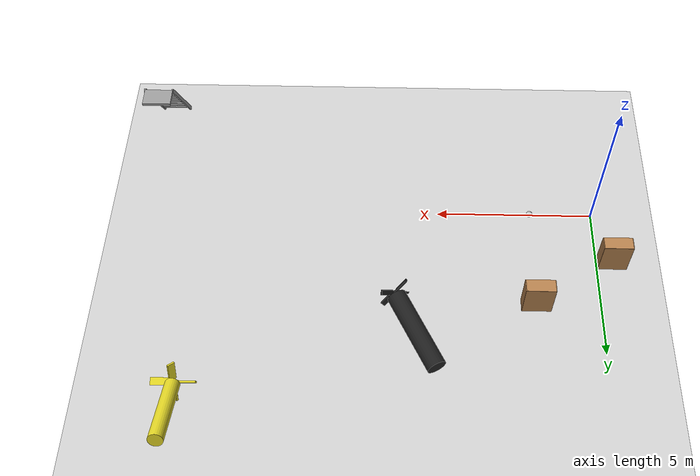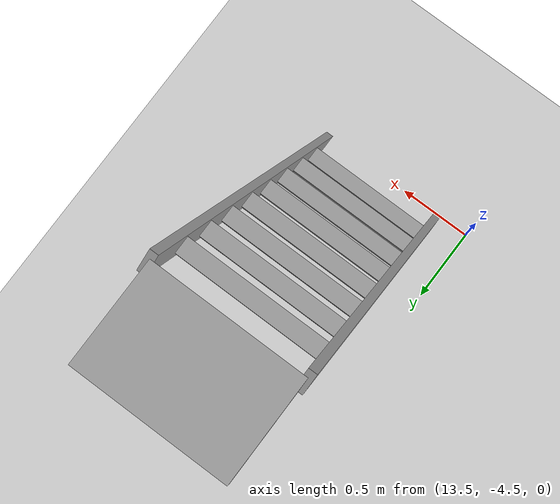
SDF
<sdf version="1.5">
 <world name="default">
  <model name="ground_plane">
   <static>1</static>
   <link name="link">
    <collision name="collision">
     <geometry><plane><normal>0 0 1</normal><size>100 100</size></plane></geometry>
     <surface><friction><ode><mu>100</mu><mu2>50</mu2></ode></friction></surface>
    </collision>
    <visual name="visual">
     <cast_shadows>0</cast_shadows>
     <geometry><plane><normal>0 0 1</normal><size>100 100</size></plane></geometry>
     <material>
      <script><uri>file://media/materials/scripts/gazebo.material</uri><name>Gazebo/Grey</name></script>
     </material>
    </visual>
   </link>
  </model>
  <light name="sun" type="directional">
   <pose>0 0 10 0 -0 0</pose>
   <diffuse>0.8 0.8 0.8 1</diffuse>
   <specular>0.2 0.2 0.2 1</specular>
   <attenuation>
    <range>1000</range>
    <constant>0.9</constant>
    <linear>0.01</linear>
    <quadratic>0.001</quadratic>
   </attenuation>
   <direction>-0.5 0.1 -0.9</direction>
  </light>
  <model name="sphere">
   <pose>2 0 0.1 0 -0 0</pose>
   <link name="body">
    <inertial>
     <inertia><ixx>1</ixx><ixy>0</ixy><ixz>0</ixz><iyy>1</iyy><iyz>0</iyz><izz>1</izz></inertia>
     <mass>1</mass>
    </inertial>
    <collision name="geom"><geometry><sphere><radius>0.1</radius></sphere></geometry></collision>
    <visual name="visual">
     <geometry><sphere><radius>0.1</radius></sphere></geometry>
     <material><script><uri>__default__</uri><name>__default__</name></script></material>
    </visual>
   </link>
   <static>1</static>
  </model>
  <physics name="default_physics" default="0" type="ode">
   <max_step_size>0.001</max_step_size>
   <real_time_factor>1</real_time_factor>
   <real_time_update_rate>1000</real_time_update_rate>
   <gravity>0 0 -9.8</gravity>
   <magnetic_field>6e-06 2.3e-05 -4.2e-05</magnetic_field>
  </physics>
  <scene><ambient>0.4 0.4 0.4 1</ambient><background>0.7 0.7 0.7 1</background><shadows>1</shadows></scene>
  <spherical_coordinates>
   <surface_model>EARTH_WGS84</surface_model>
   <latitude_deg>0</latitude_deg>
   <longitude_deg>0</longitude_deg>
   <elevation>0</elevation>
   <heading_deg>0</heading_deg>
  </spherical_coordinates>
  <model name="bookshelf">
   <static>1</static>
   <link name="link">
    <inertial><mass>1</mass></inertial>
    <collision name="back">
     <pose>0 0.005 0.6 0 -0 0</pose>
     <geometry><box><size>0.9 0.01 1.2</size></box></geometry>
    </collision>
    <visual name="visual1">
     <pose>0 0.005 0.6 0 -0 0</pose>
     <geometry><box><size>0.9 0.01 1.2</size></box></geometry>
     <material>
      <script><uri>file://media/materials/scripts/gazebo.material</uri><name>Gazebo/Wood</name></script>
     </material>
    </visual>
    <collision name="left_side">
     <pose>0.45 -0.195 0.6 0 -0 0</pose>
     <geometry><box><size>0.02 0.4 1.2</size></box></geometry>
    </collision>
    <visual name="visual2">
     <pose>0.45 -0.195 0.6 0 -0 0</pose>
     <geometry><box><size>0.02 0.4 1.2</size></box></geometry>
     <material>
      <script><uri>file://media/materials/scripts/gazebo.material</uri><name>Gazebo/Wood</name></script>
     </material>
    </visual>
    <collision name="right_side">
     <pose>-0.45 -0.195 0.6 0 -0 0</pose>
     <geometry><box><size>0.02 0.4 1.2</size></box></geometry>
    </collision>
    <visual name="visual3">
     <pose>-0.45 -0.195 0.6 0 -0 0</pose>
     <geometry><box><size>0.02 0.4 1.2</size></box></geometry>
     <material>
      <script><uri>file://media/materials/scripts/gazebo.material</uri><name>Gazebo/Wood</name></script>
     </material>
    </visual>
    <collision name="bottom">
     <pose>0 -0.195 0.03 0 -0 0</pose>
     <geometry><box><size>0.88 0.4 0.06</size></box></geometry>
    </collision>
    <visual name="visual4">
     <pose>0 -0.195 0.03 0 -0 0</pose>
     <geometry><box><size>0.88 0.4 0.06</size></box></geometry>
     <material>
      <script><uri>file://media/materials/scripts/gazebo.material</uri><name>Gazebo/Wood</name></script>
     </material>
    </visual>
    <collision name="top">
     <pose>0 -0.195 1.19 0 -0 0</pose>
     <geometry><box><size>0.88 0.4 0.02</size></box></geometry>
    </collision>
    <visual name="visual5">
     <pose>0 -0.195 1.19 0 -0 0</pose>
     <geometry><box><size>0.88 0.4 0.02</size></box></geometry>
     <material>
      <script><uri>file://media/materials/scripts/gazebo.material</uri><name>Gazebo/Wood</name></script>
     </material>
    </visual>
    <collision name="low_shelf">
     <pose>0 -0.195 0.43 0 -0 0</pose>
     <geometry><box><size>0.88 0.4 0.02</size></box></geometry>
    </collision>
    <visual name="visual6">
     <pose>0 -0.195 0.43 0 -0 0</pose>
     <geometry><box><size>0.88 0.4 0.02</size></box></geometry>
     <material>
      <script><uri>file://media/materials/scripts/gazebo.material</uri><name>Gazebo/Wood</name></script>
     </material>
    </visual>
    <collision name="high_shelf">
     <pose>0 -0.195 0.8 0 -0 0</pose>
     <geometry><box><size>0.88 0.4 0.02</size></box></geometry>
    </collision>
    <visual name="visual7">
     <pose>0 -0.195 0.8 0 -0 0</pose>
     <geometry><box><size>0.88 0.4 0.02</size></box></geometry>
     <material>
      <script><uri>file://media/materials/scripts/gazebo.material</uri><name>Gazebo/Wood</name></script>
     </material>
    </visual>
   </link>
   <pose>2 3.56217 0 0 -0 0</pose>
  </model>
  <model name="bookshelf_0">
   <static>1</static>
   <link name="link">
    <inertial><mass>1</mass></inertial>
    <collision name="back">
     <pose>0 0.005 0.6 0 -0 0</pose>
     <geometry><box><size>0.9 0.01 1.2</size></box></geometry>
    </collision>
    <visual name="visual1">
     <pose>0 0.005 0.6 0 -0 0</pose>
     <geometry><box><size>0.9 0.01 1.2</size></box></geometry>
     <material>
      <script><uri>file://media/materials/scripts/gazebo.material</uri><name>Gazebo/Wood</name></script>
     </material>
    </visual>
    <collision name="left_side">
     <pose>0.45 -0.195 0.6 0 -0 0</pose>
     <geometry><box><size>0.02 0.4 1.2</size></box></geometry>
    </collision>
    <visual name="visual2">
     <pose>0.45 -0.195 0.6 0 -0 0</pose>
     <geometry><box><size>0.02 0.4 1.2</size></box></geometry>
     <material>
      <script><uri>file://media/materials/scripts/gazebo.material</uri><name>Gazebo/Wood</name></script>
     </material>
    </visual>
    <collision name="right_side">
     <pose>-0.45 -0.195 0.6 0 -0 0</pose>
     <geometry><box><size>0.02 0.4 1.2</size></box></geometry>
    </collision>
    <visual name="visual3">
     <pose>-0.45 -0.195 0.6 0 -0 0</pose>
     <geometry><box><size>0.02 0.4 1.2</size></box></geometry>
     <material>
      <script><uri>file://media/materials/scripts/gazebo.material</uri><name>Gazebo/Wood</name></script>
     </material>
    </visual>
    <collision name="bottom">
     <pose>0 -0.195 0.03 0 -0 0</pose>
     <geometry><box><size>0.88 0.4 0.06</size></box></geometry>
    </collision>
    <visual name="visual4">
     <pose>0 -0.195 0.03 0 -0 0</pose>
     <geometry><box><size>0.88 0.4 0.06</size></box></geometry>
     <material>
      <script><uri>file://media/materials/scripts/gazebo.material</uri><name>Gazebo/Wood</name></script>
     </material>
    </visual>
    <collision name="top">
     <pose>0 -0.195 1.19 0 -0 0</pose>
     <geometry><box><size>0.88 0.4 0.02</size></box></geometry>
    </collision>
    <visual name="visual5">
     <pose>0 -0.195 1.19 0 -0 0</pose>
     <geometry><box><size>0.88 0.4 0.02</size></box></geometry>
     <material>
      <script><uri>file://media/materials/scripts/gazebo.material</uri><name>Gazebo/Wood</name></script>
     </material>
    </visual>
    <collision name="low_shelf">
     <pose>0 -0.195 0.43 0 -0 0</pose>
     <geometry><box><size>0.88 0.4 0.02</size></box></geometry>
    </collision>
    <visual name="visual6">
     <pose>0 -0.195 0.43 0 -0 0</pose>
     <geometry><box><size>0.88 0.4 0.02</size></box></geometry>
     <material>
      <script><uri>file://media/materials/scripts/gazebo.material</uri><name>Gazebo/Wood</name></script>
     </material>
    </visual>
    <collision name="high_shelf">
     <pose>0 -0.195 0.8 0 -0 0</pose>
     <geometry><box><size>0.88 0.4 0.02</size></box></geometry>
    </collision>
    <visual name="visual7">
     <pose>0 -0.195 0.8 0 -0 0</pose>
     <geometry><box><size>0.88 0.4 0.02</size></box></geometry>
     <material>
      <script><uri>file://media/materials/scripts/gazebo.material</uri><name>Gazebo/Wood</name></script>
     </material>
    </visual>
   </link>
   <pose>-0.493645 2 0 0 -0 0</pose>
  </model>
  <model name="submarine">
   <pose>12.0582 8.53885 3.44094 1.97848 -0 0</pose>
   <link name="body">
    <inertial>
     <mass>251.327</mass>
     <inertia><ixx>86.2891</ixx><ixy>0</ixy><ixz>0</ixz><iyy>86.2891</iyy><iyz>0</iyz><izz>5.02655</izz></inertia>
    </inertial>
    <visual name="body_visual">
     <geometry><cylinder><radius>0.2</radius><length>2</length></cylinder></geometry>
     <material>
      <script><uri>file://media/materials/scripts/gazebo.material</uri><name>Gazebo/Yellow</name></script>
     </material>
    </visual>
    <collision name="body_collision">
     <geometry><cylinder><radius>0.2</radius><length>2</length></cylinder></geometry>
    </collision>
    <visual name="spacer_visual">
     <pose>0 0 1.05855 0 -0 0</pose>
     <geometry><cylinder><radius>0.0933402</radius><length>0.127211</length></cylinder></geometry>
     <material>
      <script><uri>file://media/materials/scripts/gazebo.material</uri><name>Gazebo/Yellow</name></script>
     </material>
    </visual>
   </link>
   <link name="propeller">
    <pose>0 0 1.09 3.14159 -0 0</pose>
    <inertial>
     <mass>21.82</mass>
     <inertia>
      <ixx>0.459994</ixx>
      <ixy>0</ixy>
      <ixz>0</ixz>
      <iyy>0.459994</iyy>
      <iyz>0</iyz>
      <izz>0.909167</izz>
     </inertia>
    </inertial>
    <visual name="blade1_visual">
     <pose>0.34334 0 0 0.785398 -0 0</pose>
     <geometry><box><size>0.5 0.2 0.05455</size></box></geometry>
     <material>
      <script><uri>file://media/materials/scripts/gazebo.material</uri><name>Gazebo/Yellow</name></script>
     </material>
    </visual>
    <collision name="blade1_collision">
     <pose>0.34334 0 0 0.785398 -0 0</pose>
     <geometry><box><size>0.5 0.2 0.05455</size></box></geometry>
    </collision>
    <visual name="blade2_visual">
     <pose>0 0.34334 0 0.785398 0 1.5708</pose>
     <geometry><box><size>0.5 0.2 0.05455</size></box></geometry>
     <material>
      <script><uri>file://media/materials/scripts/gazebo.material</uri><name>Gazebo/Yellow</name></script>
     </material>
    </visual>
    <collision name="blade2_collision">
     <pose>0 0.34334 0 0.785398 0 1.5708</pose>
     <geometry><box><size>0.5 0.2 0.05455</size></box></geometry>
    </collision>
    <visual name="blade3_visual">
     <pose>-0.34334 -0 0 -0.785398 0 0</pose>
     <geometry><box><size>0.5 0.2 0.05455</size></box></geometry>
     <material>
      <script><uri>file://media/materials/scripts/gazebo.material</uri><name>Gazebo/Yellow</name></script>
     </material>
    </visual>
    <collision name="blade3_collision">
     <pose>-0.34334 -0 0 -0.785398 0 0</pose>
     <geometry><box><size>0.5 0.2 0.05455</size></box></geometry>
    </collision>
    <visual name="blade4_visual">
     <pose>-0 -0.34334 0 -0.785398 -0 1.5708</pose>
     <geometry><box><size>0.5 0.2 0.05455</size></box></geometry>
     <material>
      <script><uri>file://media/materials/scripts/gazebo.material</uri><name>Gazebo/Yellow</name></script>
     </material>
    </visual>
    <collision name="blade4_collision">
     <pose>-0 -0.34334 0 -0.785398 -0 1.5708</pose>
     <geometry><box><size>0.5 0.2 0.05455</size></box></geometry>
    </collision>
   </link>
   <joint name="spinning_joint" type="revolute">
    <parent>body</parent>
    <child>propeller</child>
    <axis>
     <xyz>0 0 1</xyz>
     <use_parent_model_frame>1</use_parent_model_frame>
     <limit><lower>-1e+12</lower><upper>1e+12</upper><effort>-1</effort><velocity>-1</velocity></limit>
     <dynamics><spring_reference>0</spring_reference><spring_stiffness>0</spring_stiffness></dynamics>
    </axis>
   </joint>
   <plugin name="submarine_propeller_1" filename="libLiftDragPlugin.so">
    <air_density>1000</air_density>
    <cla>1.2535816618911175</cla>
    <cla_stall>-1.4326647564469914</cla_stall>
    <cda>0</cda>
    <cda_stall>1.4326647564469914</cda_stall>
    <alpha_stall>1.396</alpha_stall>
    <a0>0</a0>
    <area>0.27637</area>
    <upward>0 -0.7071067811865476 -0.7071067811865475</upward>
    <forward>0 -0.7071067811865475 0.7071067811865476</forward>
    <link_name>propeller</link_name>
    <cp>0.35 0 0</cp>
   </plugin>
   <plugin name="submarine_propeller_2" filename="libLiftDragPlugin.so">
    <air_density>1000</air_density>
    <cla>1.2535816618911175</cla>
    <cla_stall>-1.4326647564469914</cla_stall>
    <cda>0</cda>
    <cda_stall>1.4326647564469914</cda_stall>
    <alpha_stall>1.396</alpha_stall>
    <a0>0</a0>
    <area>0.27637</area>
    <upward>-0.7071067811865475 0 -0.7071067811865476</upward>
    <forward>-0.7071067811865476 0 0.7071067811865475</forward>
    <link_name>propeller</link_name>
    <cp>0 -0.35 0</cp>
   </plugin>
   <plugin name="submarine_propeller_3" filename="libLiftDragPlugin.so">
    <air_density>1000</air_density>
    <cla>1.2535816618911175</cla>
    <cla_stall>-1.4326647564469914</cla_stall>
    <cda>0</cda>
    <cda_stall>1.4326647564469914</cda_stall>
    <alpha_stall>1.396</alpha_stall>
    <a0>0</a0>
    <area>0.27637</area>
    <upward>0 0.7071067811865475 -0.7071067811865476</upward>
    <forward>0 -0.7071067811865476 -0.7071067811865475</forward>
    <link_name>propeller</link_name>
    <cp>-0.35 0 0</cp>
   </plugin>
   <plugin name="submarine_propeller_4" filename="libLiftDragPlugin.so">
    <air_density>1000</air_density>
    <cla>1.2535816618911175</cla>
    <cla_stall>-1.4326647564469914</cla_stall>
    <cda>0</cda>
    <cda_stall>1.4326647564469914</cda_stall>
    <alpha_stall>1.396</alpha_stall>
    <a0>0</a0>
    <area>0.27637</area>
    <upward>0.7071067811865476 0 -0.7071067811865475</upward>
    <forward>0.7071067811865475 0 0.7071067811865476</forward>
    <link_name>propeller</link_name>
    <cp>0 0.35 0</cp>
   </plugin>
   <plugin name="buoyancy" filename="libBuoyancyPlugin.so"><fluid_density>1000</fluid_density></plugin>
  </model>
  <model name="submarine_sinking">
   <pose>6.20713 3.5789 0.44906 1.47308 0.870194 0.413315</pose>
   <link name="body">
    <pose>0 0 -1.07935 0 -0 0</pose>
    <inertial>
     <mass>1102.7</mass>
     <inertia><ixx>645.998</ixx><ixy>0</ixy><ixz>0</ixz><iyy>645.998</iyy><iyz>0</iyz><izz>49.6215</izz></inertia>
    </inertial>
    <visual name="body_visual">
     <geometry><cylinder><radius>0.3</radius><length>2.6</length></cylinder></geometry>
     <material>
      <script><uri>file://media/materials/scripts/gazebo.material</uri><name>Gazebo/Black</name></script>
     </material>
    </visual>
    <collision name="body_collision">
     <geometry><cylinder><radius>0.3</radius><length>2.6</length></cylinder></geometry>
    </collision>
    <visual name="spacer_visual">
     <pose>0 0 1.37855 0 -0 0</pose>
     <geometry><cylinder><radius>0.0933402</radius><length>0.127211</length></cylinder></geometry>
     <material>
      <script><uri>file://media/materials/scripts/gazebo.material</uri><name>Gazebo/Black</name></script>
     </material>
    </visual>
   </link>
   <link name="propeller">
    <pose>0 0 0.3455 3.14159 -0 0</pose>
    <inertial>
     <mass>25.2312</mass>
     <inertia><ixx>0.531907</ixx><ixy>0</ixy><ixz>0</ixz><iyy>0.531907</iyy><iyz>0</iyz><izz>1.0513</izz></inertia>
    </inertial>
    <visual name="blade1_visual">
     <pose>0.34334 0 0 0.785398 -0 0</pose>
     <geometry><box><size>0.5 0.154178 0.05455</size></box></geometry>
     <material>
      <script><uri>file://media/materials/scripts/gazebo.material</uri><name>Gazebo/Black</name></script>
     </material>
    </visual>
    <collision name="blade1_collision">
     <pose>0.34334 0 0 0.785398 -0 0</pose>
     <geometry><box><size>0.5 0.154178 0.05455</size></box></geometry>
    </collision>
    <visual name="blade2_visual">
     <pose>0 0.34334 0 0.785398 0 1.5708</pose>
     <geometry><box><size>0.5 0.154178 0.05455</size></box></geometry>
     <material>
      <script><uri>file://media/materials/scripts/gazebo.material</uri><name>Gazebo/Black</name></script>
     </material>
    </visual>
    <collision name="blade2_collision">
     <pose>0 0.34334 0 0.785398 0 1.5708</pose>
     <geometry><box><size>0.5 0.154178 0.05455</size></box></geometry>
    </collision>
    <visual name="blade3_visual">
     <pose>-0.34334 -0 0 -0.785398 0 0</pose>
     <geometry><box><size>0.5 0.154178 0.05455</size></box></geometry>
     <material>
      <script><uri>file://media/materials/scripts/gazebo.material</uri><name>Gazebo/Black</name></script>
     </material>
    </visual>
    <collision name="blade3_collision">
     <pose>-0.34334 -0 0 -0.785398 0 0</pose>
     <geometry><box><size>0.5 0.154178 0.05455</size></box></geometry>
    </collision>
    <visual name="blade4_visual">
     <pose>-0 -0.34334 0 -0.785398 -0 1.5708</pose>
     <geometry><box><size>0.5 0.154178 0.05455</size></box></geometry>
     <material>
      <script><uri>file://media/materials/scripts/gazebo.material</uri><name>Gazebo/Black</name></script>
     </material>
    </visual>
    <collision name="blade4_collision">
     <pose>-0 -0.34334 0 -0.785398 -0 1.5708</pose>
     <geometry><box><size>0.5 0.154178 0.05455</size></box></geometry>
    </collision>
   </link>
   <joint name="spinning_joint" type="revolute">
    <parent>body</parent>
    <child>propeller</child>
    <axis>
     <xyz>0 0 1</xyz>
     <use_parent_model_frame>1</use_parent_model_frame>
     <limit><lower>-1e+12</lower><upper>1e+12</upper><effort>-1</effort><velocity>-1</velocity></limit>
     <dynamics><spring_reference>0</spring_reference><spring_stiffness>0</spring_stiffness></dynamics>
    </axis>
   </joint>
   <plugin name="buoyancy" filename="libBuoyancyPlugin.so"><fluid_density>999.1026</fluid_density></plugin>
  </model>
  <model name="ladder_60deg_0rails">
   <static>1</static>
   <link name="step0">
    <pose>0 0.15396 0.266667 0 -0 0</pose>
    <inertial>
     <mass>9.75482</mass>
     <inertia>
      <ixx>0.00957124</ixx>
      <iyy>0.65963</iyy>
      <izz>0.666842</izz>
      <ixy>0</ixy>
      <ixz>0</ixz>
      <iyz>0</iyz>
     </inertia>
    </inertial>
    <collision name="collision"><geometry><box><size>0.9 0.1016 0.0381</size></box></geometry></collision>
    <visual name="visual">
     <geometry><box><size>0.9 0.1016 0.0381</size></box></geometry>
     <material>
      <script><uri>file://media/materials/scripts/gazebo.material</uri><name>Gazebo/Grey</name></script>
     </material>
    </visual>
   </link>
   <link name="step1">
    <pose>0 0.30792 0.533333 0 -0 0</pose>
    <inertial>
     <mass>9.75482</mass>
     <inertia>
      <ixx>0.00957124</ixx>
      <iyy>0.65963</iyy>
      <izz>0.666842</izz>
      <ixy>0</ixy>
      <ixz>0</ixz>
      <iyz>0</iyz>
     </inertia>
    </inertial>
    <collision name="collision"><geometry><box><size>0.9 0.1016 0.0381</size></box></geometry></collision>
    <visual name="visual">
     <geometry><box><size>0.9 0.1016 0.0381</size></box></geometry>
     <material>
      <script><uri>file://media/materials/scripts/gazebo.material</uri><name>Gazebo/Grey</name></script>
     </material>
    </visual>
   </link>
   <link name="step2">
    <pose>0 0.46188 0.8 0 -0 0</pose>
    <inertial>
     <mass>9.75482</mass>
     <inertia>
      <ixx>0.00957124</ixx>
      <iyy>0.65963</iyy>
      <izz>0.666842</izz>
      <ixy>0</ixy>
      <ixz>0</ixz>
      <iyz>0</iyz>
     </inertia>
    </inertial>
    <collision name="collision"><geometry><box><size>0.9 0.1016 0.0381</size></box></geometry></collision>
    <visual name="visual">
     <geometry><box><size>0.9 0.1016 0.0381</size></box></geometry>
     <material>
      <script><uri>file://media/materials/scripts/gazebo.material</uri><name>Gazebo/Grey</name></script>
     </material>
    </visual>
   </link>
   <link name="step3">
    <pose>0 0.61584 1.06667 0 -0 0</pose>
    <inertial>
     <mass>9.75482</mass>
     <inertia>
      <ixx>0.00957124</ixx>
      <iyy>0.65963</iyy>
      <izz>0.666842</izz>
      <ixy>0</ixy>
      <ixz>0</ixz>
      <iyz>0</iyz>
     </inertia>
    </inertial>
    <collision name="collision"><geometry><box><size>0.9 0.1016 0.0381</size></box></geometry></collision>
    <visual name="visual">
     <geometry><box><size>0.9 0.1016 0.0381</size></box></geometry>
     <material>
      <script><uri>file://media/materials/scripts/gazebo.material</uri><name>Gazebo/Grey</name></script>
     </material>
    </visual>
   </link>
   <link name="step4">
    <pose>0 0.7698 1.33333 0 -0 0</pose>
    <inertial>
     <mass>9.75482</mass>
     <inertia>
      <ixx>0.00957124</ixx>
      <iyy>0.65963</iyy>
      <izz>0.666842</izz>
      <ixy>0</ixy>
      <ixz>0</ixz>
      <iyz>0</iyz>
     </inertia>
    </inertial>
    <collision name="collision"><geometry><box><size>0.9 0.1016 0.0381</size></box></geometry></collision>
    <visual name="visual">
     <geometry><box><size>0.9 0.1016 0.0381</size></box></geometry>
     <material>
      <script><uri>file://media/materials/scripts/gazebo.material</uri><name>Gazebo/Grey</name></script>
     </material>
    </visual>
   </link>
   <link name="step5">
    <pose>0 0.92376 1.6 0 -0 0</pose>
    <inertial>
     <mass>9.75482</mass>
     <inertia>
      <ixx>0.00957124</ixx>
      <iyy>0.65963</iyy>
      <izz>0.666842</izz>
      <ixy>0</ixy>
      <ixz>0</ixz>
      <iyz>0</iyz>
     </inertia>
    </inertial>
    <collision name="collision"><geometry><box><size>0.9 0.1016 0.0381</size></box></geometry></collision>
    <visual name="visual">
     <geometry><box><size>0.9 0.1016 0.0381</size></box></geometry>
     <material>
      <script><uri>file://media/materials/scripts/gazebo.material</uri><name>Gazebo/Grey</name></script>
     </material>
    </visual>
   </link>
   <link name="step6">
    <pose>0 1.07772 1.86667 0 -0 0</pose>
    <inertial>
     <mass>9.75482</mass>
     <inertia>
      <ixx>0.00957124</ixx>
      <iyy>0.65963</iyy>
      <izz>0.666842</izz>
      <ixy>0</ixy>
      <ixz>0</ixz>
      <iyz>0</iyz>
     </inertia>
    </inertial>
    <collision name="collision"><geometry><box><size>0.9 0.1016 0.0381</size></box></geometry></collision>
    <visual name="visual">
     <geometry><box><size>0.9 0.1016 0.0381</size></box></geometry>
     <material>
      <script><uri>file://media/materials/scripts/gazebo.material</uri><name>Gazebo/Grey</name></script>
     </material>
    </visual>
   </link>
   <link name="step7">
    <pose>0 1.23168 2.13333 0 -0 0</pose>
    <inertial>
     <mass>9.75482</mass>
     <inertia>
      <ixx>0.00957124</ixx>
      <iyy>0.65963</iyy>
      <izz>0.666842</izz>
      <ixy>0</ixy>
      <ixz>0</ixz>
      <iyz>0</iyz>
     </inertia>
    </inertial>
    <collision name="collision"><geometry><box><size>0.9 0.1016 0.0381</size></box></geometry></collision>
    <visual name="visual">
     <geometry><box><size>0.9 0.1016 0.0381</size></box></geometry>
     <material>
      <script><uri>file://media/materials/scripts/gazebo.material</uri><name>Gazebo/Grey</name></script>
     </material>
    </visual>
   </link>
   <link name="landing">
    <pose>0 1.68564 2.4 0 -0 0</pose>
    <inertial>
     <mass>57.6072</mass>
     <inertia><ixx>1.73518</ixx><iyy>3.89545</iyy><izz>5.6167</izz><ixy>0</ixy><ixz>0</ixz><iyz>0</iyz></inertia>
    </inertial>
    <collision name="collision"><geometry><box><size>0.9 0.6 0.1016</size></box></geometry></collision>
    <visual name="visual">
     <geometry><box><size>0.9 0.6 0.1016</size></box></geometry>
     <material>
      <script><uri>file://media/materials/scripts/gazebo.material</uri><name>Gazebo/Grey</name></script>
     </material>
    </visual>
   </link>
   <link name="left_side_wall">
    <pose>-0.45 0.69282 1.2 1.0472 -0 0</pose>
    <collision name="collision"><geometry><box><size>0.0508 2.85128 0.13</size></box></geometry></collision>
    <visual name="visual">
     <geometry><box><size>0.0508 2.85128 0.13</size></box></geometry>
     <material>
      <script><uri>file://media/materials/scripts/gazebo.material</uri><name>Gazebo/Grey</name></script>
     </material>
    </visual>
   </link>
   <link name="right_side_wall">
    <pose>0.45 0.69282 1.2 1.0472 -0 0</pose>
    <collision name="collision"><geometry><box><size>0.0508 2.85128 0.13</size></box></geometry></collision>
    <visual name="visual">
     <geometry><box><size>0.0508 2.85128 0.13</size></box></geometry>
     <material>
      <script><uri>file://media/materials/scripts/gazebo.material</uri><name>Gazebo/Grey</name></script>
     </material>
    </visual>
   </link>
   <pose>14.1791 -4.43569 0 0 -0 0</pose>
  </model>
 </world>
</sdf>
